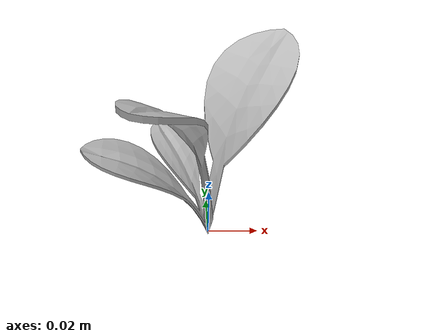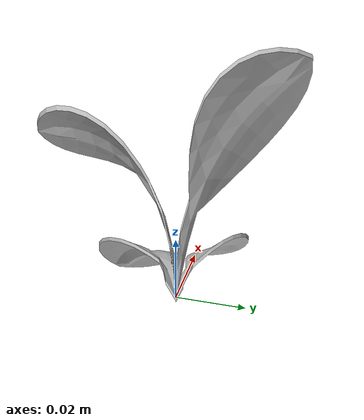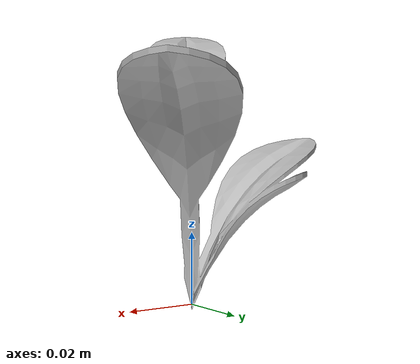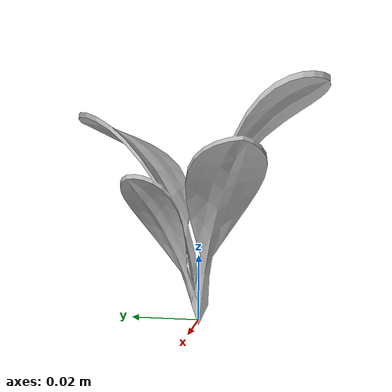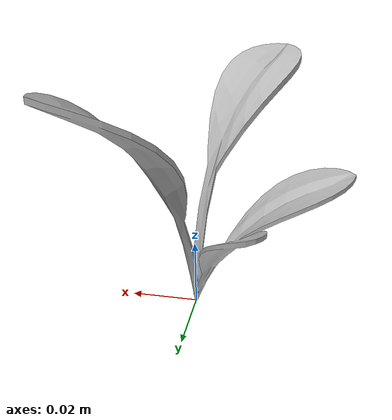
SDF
<sdf version="1.6">
  <model name="sugar_beet_54">
    <static>true</static>
    <link name="body">
      <visual name="visual">
        <geometry>
          <mesh>
            <uri>file:///sugar_beet_54/media/sugar_beet.dae</uri>
          </mesh>
        </geometry>
      </visual>
    </link>
  </model>
</sdf>
